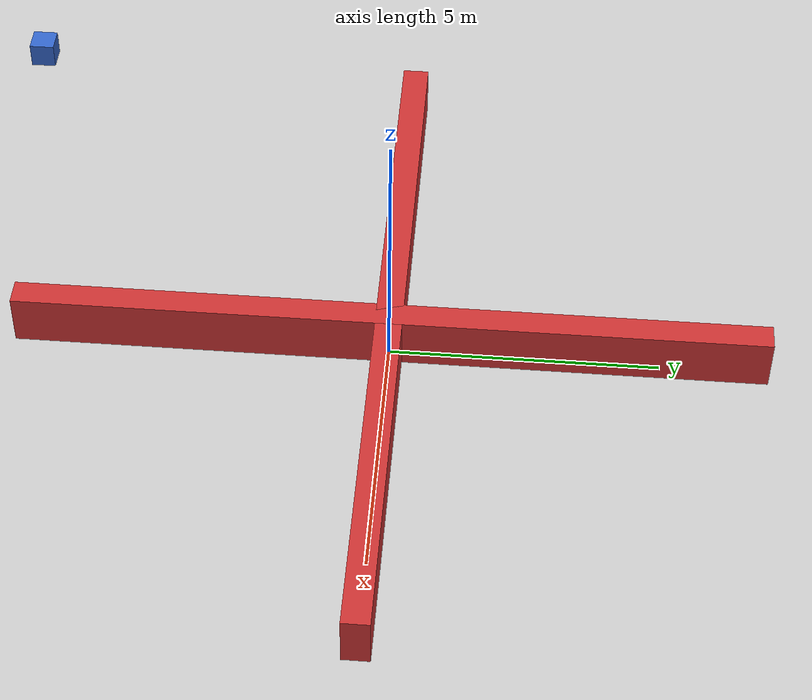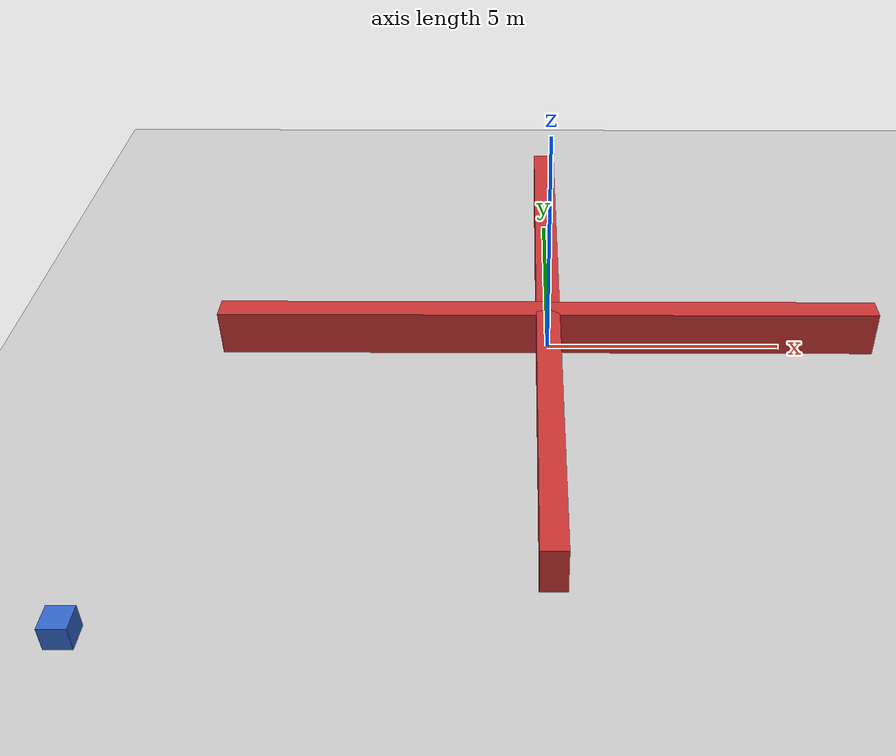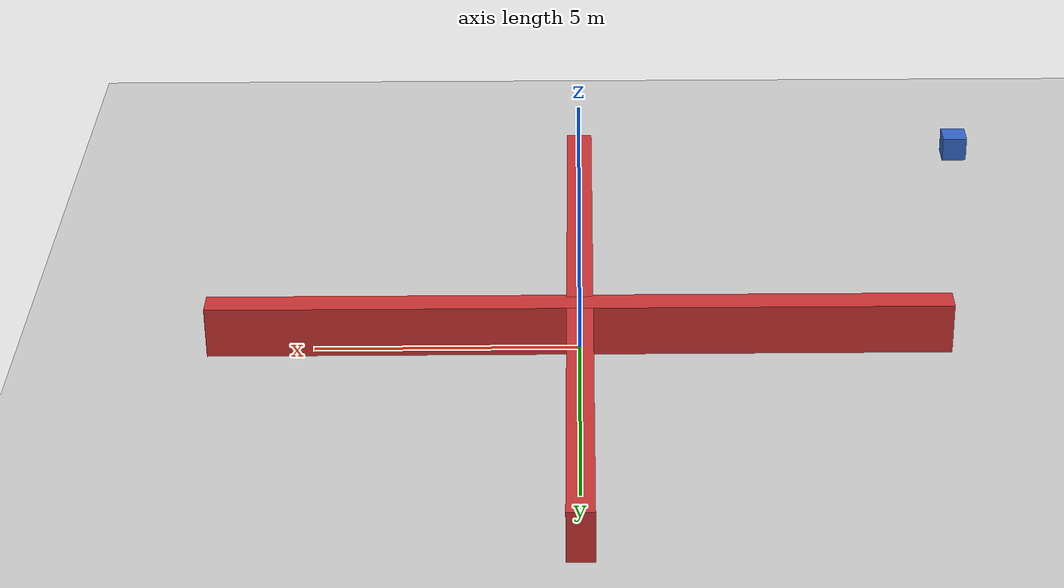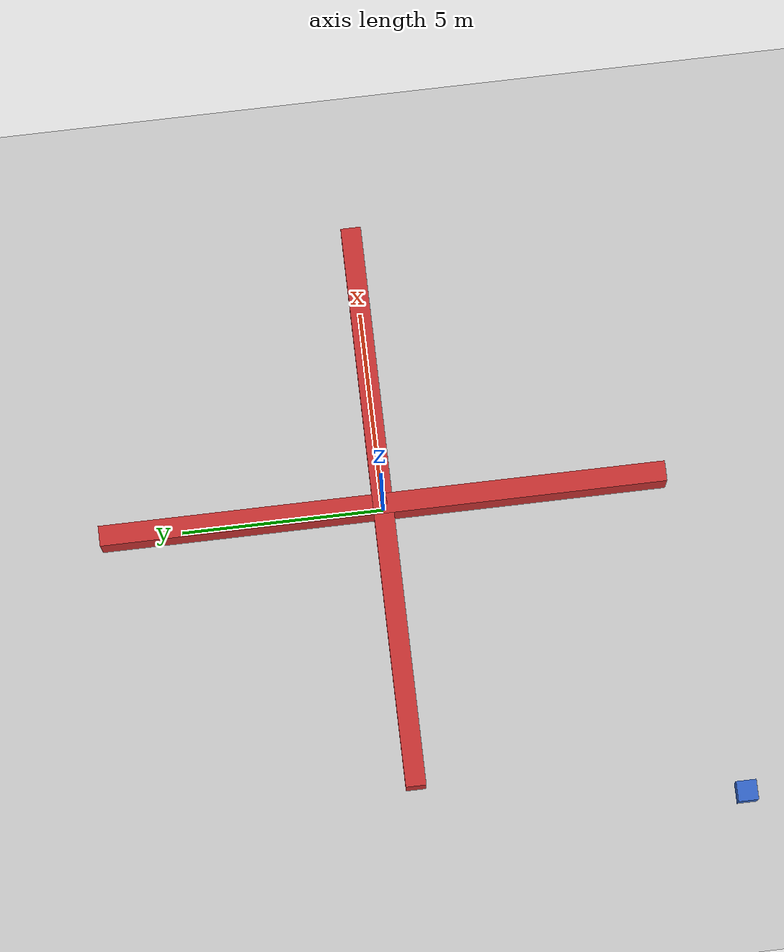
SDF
<?xml version="1.0"?>
<sdf version="1.9">
  <world name="empty_world">
    <physics name="1ms" type="ignored">
      <max_step_size>0.001</max_step_size>
      <real_time_factor>1.0</real_time_factor>
    </physics>

    <plugin filename="gz-sim-physics-system" name="gz::sim::systems::Physics"/>
    <plugin filename="gz-sim-scene-broadcaster-system" name="gz::sim::systems::SceneBroadcaster"/>
    <plugin filename="gz-sim-user-commands-system" name="gz::sim::systems::UserCommands"/>

    <light type="directional" name="sun">
      <cast_shadows>true</cast_shadows>
      <pose>0 0 10 0 0 0</pose>
      <diffuse>0.8 0.8 0.8 1</diffuse>
      <specular>0.2 0.2 0.2 1</specular>
      <direction>-0.5 0.1 -0.9</direction>
    </light>

    <model name="ground_plane">
      <static>true</static>
      <link name="link">
        <collision name="collision">
          <geometry>
            <plane>
              <normal>0 0 1</normal>
              <size>100 100</size>
            </plane>
          </geometry>
        </collision>
        <visual name="visual">
          <geometry>
            <plane>
              <normal>0 0 1</normal>
              <size>100 100</size>
            </plane>
          </geometry>
          <material>
            <ambient>0.8 0.8 0.8 1</ambient>
            <diffuse>0.8 0.8 0.8 1</diffuse>
          </material>
        </visual>
      </link>
    </model>

    <model name="wall_vertical">
      <static>true</static>
      <pose>0 0 0.5 0 0 0</pose>
      <link name="link">
        <collision name="collision">
          <geometry>
            <box><size>0.5 14 1</size></box>
          </geometry>
        </collision>
        <visual name="visual">
          <geometry>
            <box><size>0.5 14 1</size></box>
          </geometry>
          <material>
            <ambient>0.8 0.2 0.2 1</ambient>
            <diffuse>0.8 0.2 0.2 1</diffuse>
          </material>
        </visual>
      </link>
    </model>

    <model name="wall_horizontal">
      <static>true</static>
      <pose>0 0 0.5 0 0 0</pose>
      <link name="link">
        <collision name="collision">
          <geometry>
            <box><size>14 0.5 1</size></box>
          </geometry>
        </collision>
        <visual name="visual">
          <geometry>
            <box><size>14 0.5 1</size></box>
          </geometry>
          <material>
            <ambient>0.8 0.2 0.2 1</ambient>
            <diffuse>0.8 0.2 0.2 1</diffuse>
          </material>
        </visual>
      </link>
    </model>

    <include>
      <uri>model://box</uri>
      <name>box</name>
      <pose>-8 -8 0.25 0 0 0</pose>
    </include>
  </world>
</sdf>

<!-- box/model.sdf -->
<sdf version="1.9">
  <model name="box">
    <pose>0 0 0.25 0 0 0</pose>
    <link name="chassis">
      <inertial>
        <mass>1.0</mass>
        <inertia>
          <ixx>0.0208</ixx>
          <iyy>0.0208</iyy>
          <izz>0.0333</izz>
          <ixy>0</ixy>
          <ixz>0</ixz>
          <iyz>0</iyz>
        </inertia>
      </inertial>
      <collision name="collision">
        <geometry>
          <box><size>0.5 0.5 0.5</size></box>
        </geometry>
      </collision>
      <visual name="visual">
        <geometry>
          <box><size>0.5 0.5 0.5</size></box>
        </geometry>
        <material>
          <ambient>0.2 0.4 0.8 1</ambient>
          <diffuse>0.2 0.4 0.8 1</diffuse>
        </material>
      </visual>
    </link>

    <plugin filename="gz-sim-velocity-control-system" name="gz::sim::systems::VelocityControl">
      <topic>/model/box/cmd_vel</topic>
    </plugin>

    <plugin filename="gz-sim-odometry-publisher-system" name="gz::sim::systems::OdometryPublisher">
      <dimensions>2</dimensions>
      <odom_frame>box/odom</odom_frame>
      <robot_base_frame>box</robot_base_frame>
      <odom_topic>/model/box/odometry</odom_topic>
      <odom_publish_frequency>20</odom_publish_frequency>
    </plugin>
  </model>
</sdf>
